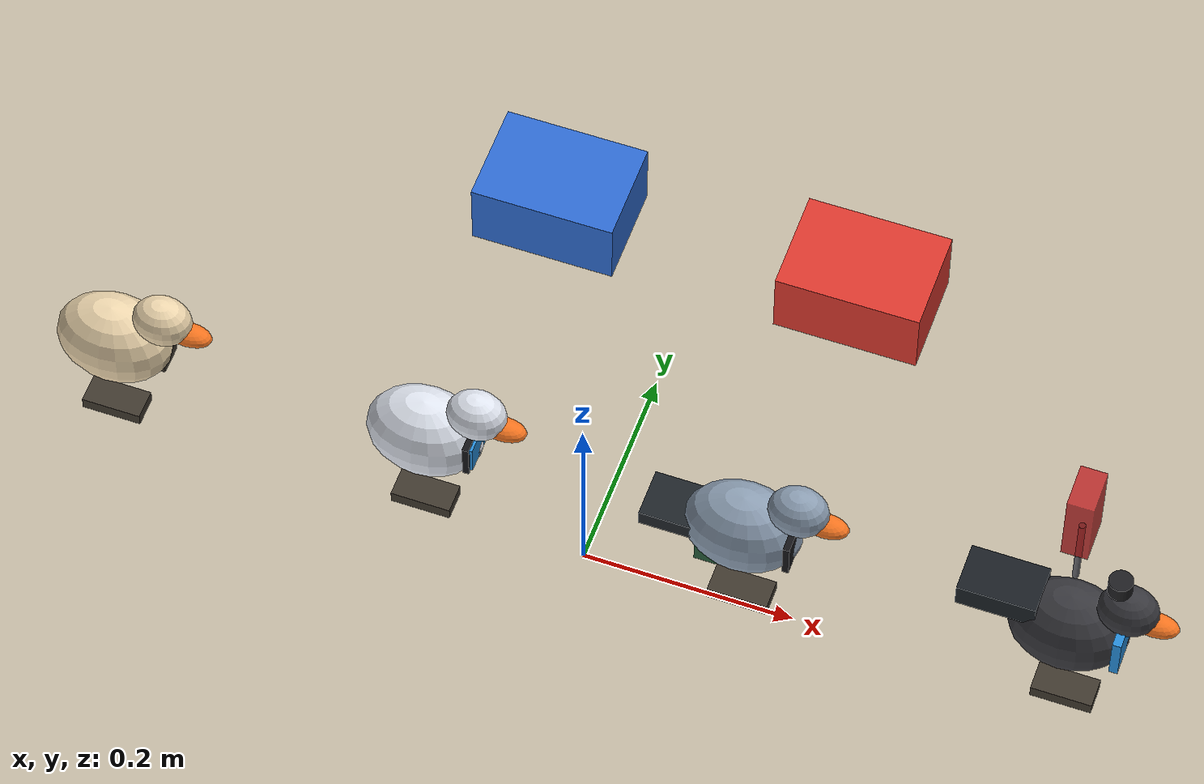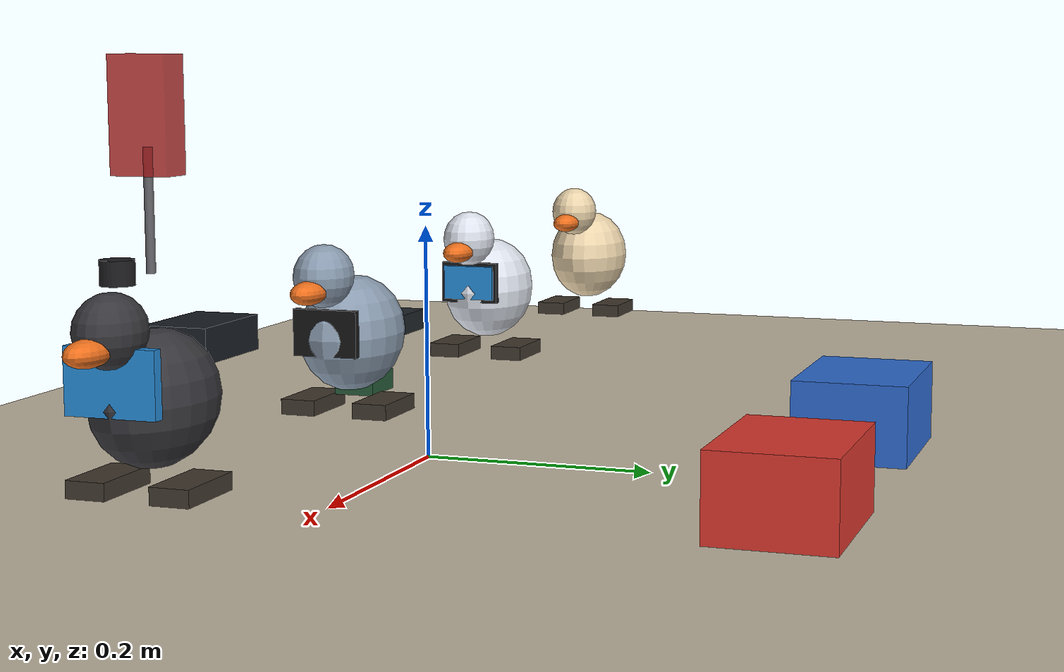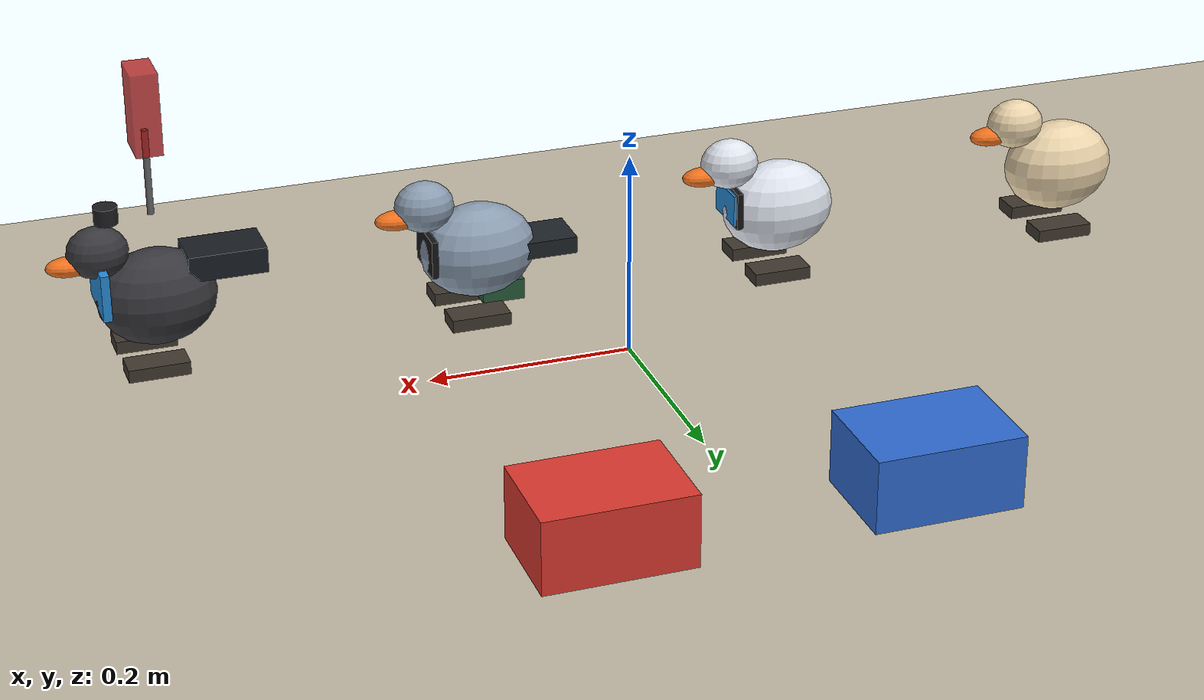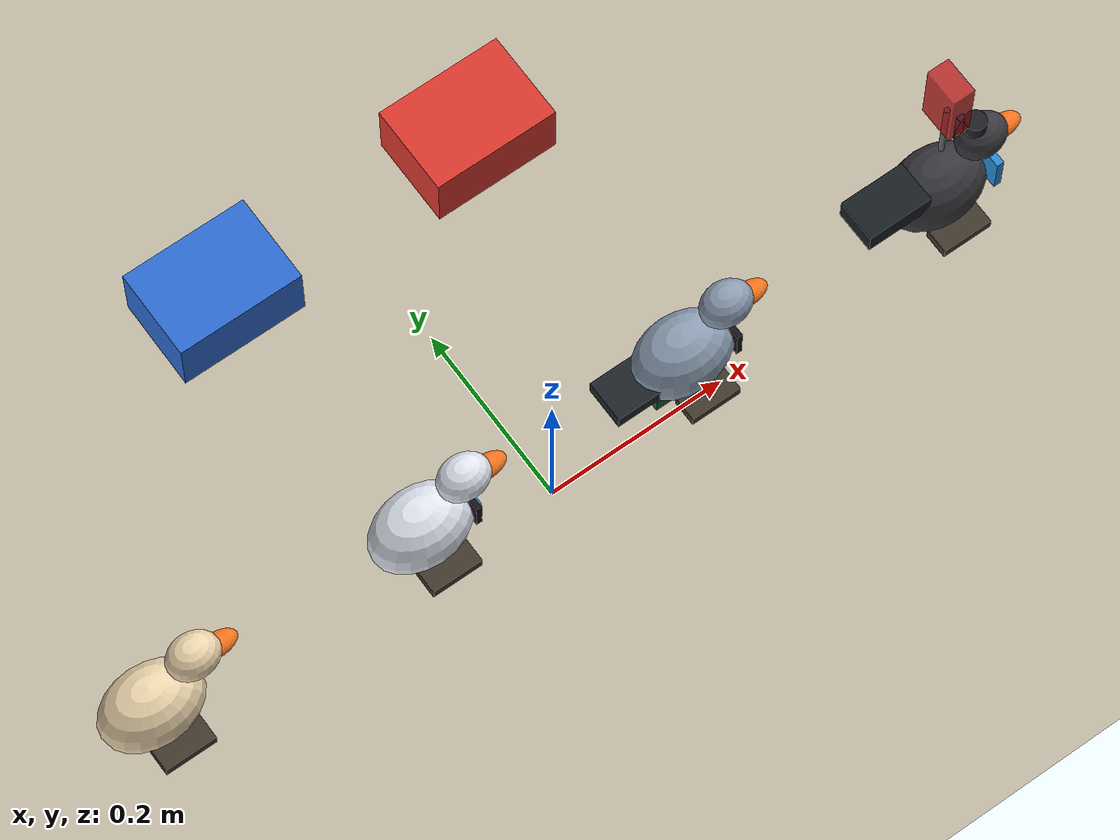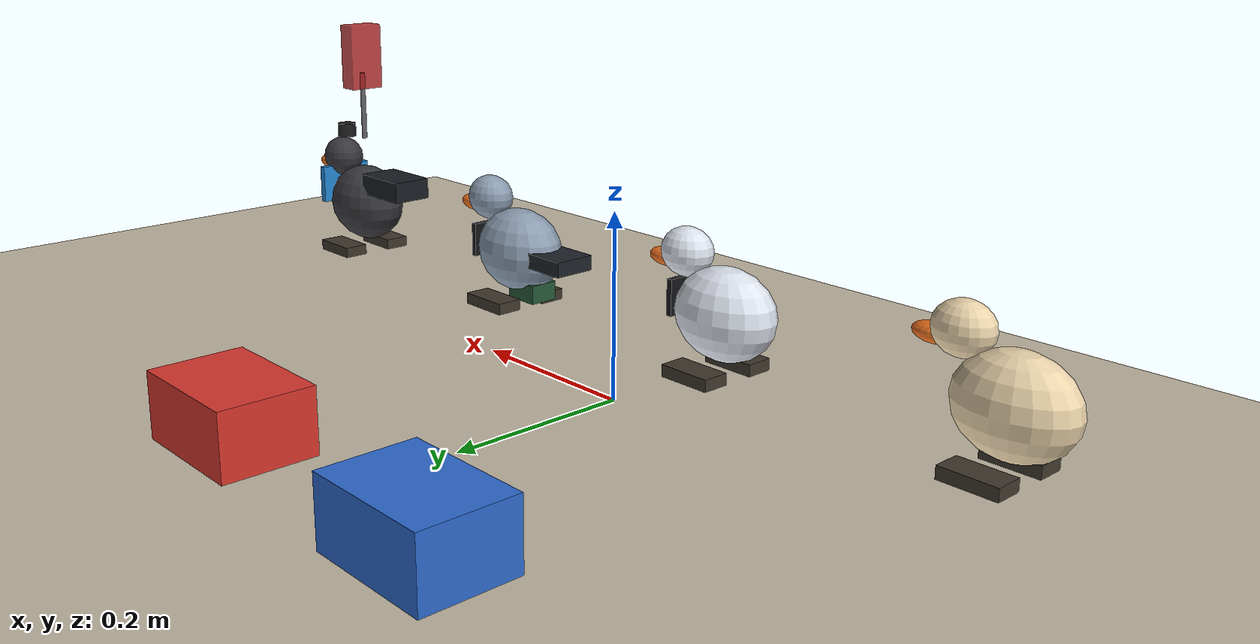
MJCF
<mujoco model="ducky_lineup">
  <compiler angle="radian" autolimits="true"/>
  <option timestep="0.005" gravity="0 0 -9.81"/>
  <visual>
    <headlight diffuse="0.6 0.6 0.6" ambient="0.35 0.35 0.35"/>
    <global azimuth="140" elevation="-20"/>
  </visual>
  <asset>
    <texture type="skybox" builtin="gradient" rgb1="0.50 0.66 0.80" rgb2="0.08 0.10 0.12" width="256" height="512"/>
    <texture type="2d" name="grid" builtin="checker" rgb1="0.82 0.78 0.70" rgb2="0.70 0.66 0.58" width="256" height="256"/>
    <material name="grid" texture="grid" texrepeat="8 8" texuniform="true"/>
  </asset>
  <worldbody>
    <light pos="0.2 -0.6 1.6" dir="0 0.2 -1"/>
    <camera name="overview" pos="-0.15 -1.15 0.55" xyaxes="1 0.05 0 -0.05 0.25 1"/>
    <geom name="floor" type="plane" size="0 0 0.05" material="grid"/>
    <body name="A_stock" pos="-0.45 0 0.13">
      <freejoint/>
      <inertial pos="-0.01 0 0.00" mass="0.80" diaginertia="0.0009 0.0010 0.0008"/>
      <geom type="ellipsoid" size="0.055 0.038 0.045" rgba="0.93 0.84 0.68 1"/>
      <geom type="ellipsoid" size="0.028 0.022 0.024" pos="0.05 0 0.05" rgba="0.93 0.84 0.68 1"/>
      <geom type="ellipsoid" size="0.022 0.012 0.009" pos="0.075 0 0.04" rgba="0.95 0.45 0.12 1"/>
      <geom type="box" size="0.028 0.014 0.006" pos="0.01 0.03 -0.055" rgba="0.25 0.22 0.18 1"/>
      <geom type="box" size="0.028 0.014 0.006" pos="0.01 -0.03 -0.055" rgba="0.25 0.22 0.18 1"/>
    </body>
    <body name="B_desk" pos="-0.15 0 0.13">
      <freejoint/>
      <inertial pos="0.00 0 0.005" mass="0.82" diaginertia="0.00095 0.00105 0.00085"/>
      <geom type="ellipsoid" size="0.055 0.038 0.045" rgba="0.88 0.90 0.94 1"/>
      <geom type="ellipsoid" size="0.028 0.022 0.024" pos="0.05 0 0.05" rgba="0.88 0.90 0.94 1"/>
      <geom type="ellipsoid" size="0.022 0.012 0.009" pos="0.075 0 0.04" rgba="0.95 0.45 0.12 1"/>
      <geom type="box" size="0.003 0.026 0.018" pos="0.048 0 0.01" rgba="0.08 0.08 0.09 1"/>
      <geom type="box" size="0.0015 0.023 0.015" pos="0.052 0 0.01" rgba="0.15 0.55 0.85 1"/>
      <geom type="box" size="0.028 0.014 0.006" pos="0.01 0.03 -0.055" rgba="0.25 0.22 0.18 1"/>
      <geom type="box" size="0.028 0.014 0.006" pos="0.01 -0.03 -0.055" rgba="0.25 0.22 0.18 1"/>
    </body>
    <body name="C_opt" pos="0.15 0 0.13">
      <freejoint/>
      <inertial pos="-0.015 0 -0.01" mass="0.94" diaginertia="0.00115 0.00125 0.00100"/>
      <geom type="ellipsoid" size="0.055 0.038 0.045" rgba="0.55 0.62 0.70 1"/>
      <geom type="ellipsoid" size="0.028 0.022 0.024" pos="0.05 0 0.05" rgba="0.55 0.62 0.70 1"/>
      <geom type="ellipsoid" size="0.022 0.012 0.009" pos="0.075 0 0.04" rgba="0.95 0.45 0.12 1"/>
      <geom type="box" size="0.035 0.023 0.008" pos="-0.055 0 0.000" rgba="0.12 0.14 0.16 1"/>
      <geom type="box" size="0.003 0.026 0.018" pos="0.048 0 0.006" rgba="0.08 0.08 0.09 1"/>
      <geom type="box" size="0.020 0.016 0.010" pos="-0.02 0 -0.040" rgba="0.15 0.35 0.22 1"/>
      <geom type="box" size="0.028 0.014 0.006" pos="0.01 0.03 -0.055" rgba="0.25 0.22 0.18 1"/>
      <geom type="box" size="0.028 0.014 0.006" pos="0.01 -0.03 -0.055" rgba="0.25 0.22 0.18 1"/>
    </body>
    <body name="D_full" pos="0.45 0 0.13">
      <freejoint/>
      <inertial pos="-0.02 0 0.04" mass="1.20" diaginertia="0.0018 0.0020 0.0015"/>
      <geom type="ellipsoid" size="0.055 0.038 0.045" rgba="0.22 0.22 0.24 1"/>
      <geom type="ellipsoid" size="0.028 0.022 0.024" pos="0.05 0 0.05" rgba="0.22 0.22 0.24 1"/>
      <geom type="ellipsoid" size="0.022 0.012 0.009" pos="0.075 0 0.04" rgba="0.95 0.45 0.12 1"/>
      <geom type="box" size="0.036 0.023 0.012" pos="-0.062 0 0.030" rgba="0.10 0.12 0.14 1"/>
      <geom type="box" size="0.004 0.032 0.022" pos="0.050 0 0.018" rgba="0.15 0.55 0.85 1"/>
      <geom type="cylinder" size="0.011 0.008" pos="0.04 0 0.085" rgba="0.12 0.12 0.13 1"/>
      <geom type="cylinder" size="0.003 0.04" pos="0.00 0 0.12" rgba="0.4 0.4 0.42 1"/>
      <geom type="box" size="0.012 0.020 0.038" pos="0.00 0 0.18" rgba="0.75 0.15 0.15 0.85"/>
      <geom type="box" size="0.028 0.014 0.006" pos="0.01 0.03 -0.055" rgba="0.25 0.22 0.18 1"/>
      <geom type="box" size="0.028 0.014 0.006" pos="0.01 -0.03 -0.055" rgba="0.25 0.22 0.18 1"/>
    </body>
    <body name="station_red" pos="0.15 0.35 0">
      <geom type="box" size="0.07 0.05 0.035" pos="0 0 0.035" rgba="0.86 0.22 0.18 1"/>
    </body>
    <body name="station_blue" pos="-0.15 0.35 0">
      <geom type="box" size="0.07 0.05 0.035" pos="0 0 0.035" rgba="0.18 0.42 0.82 1"/>
    </body>
  </worldbody>
</mujoco>
